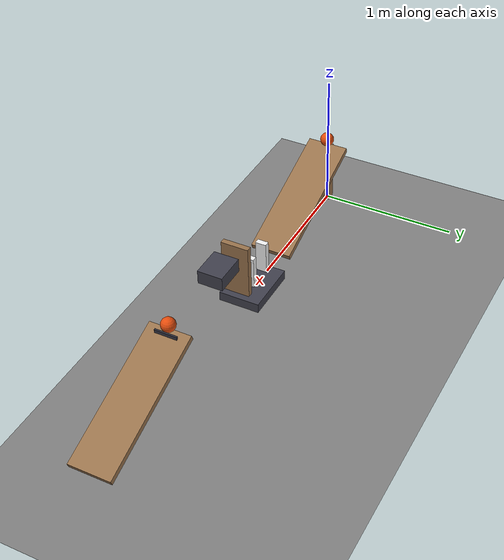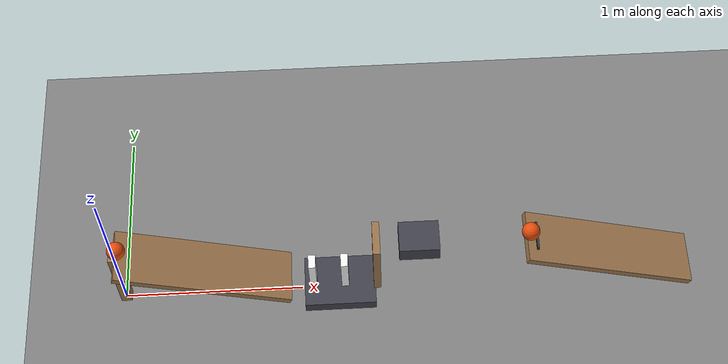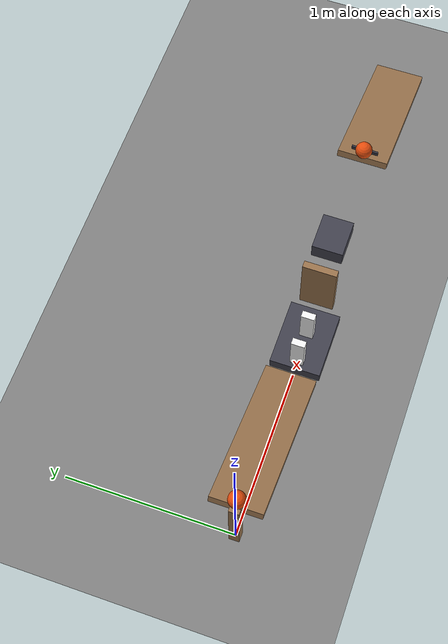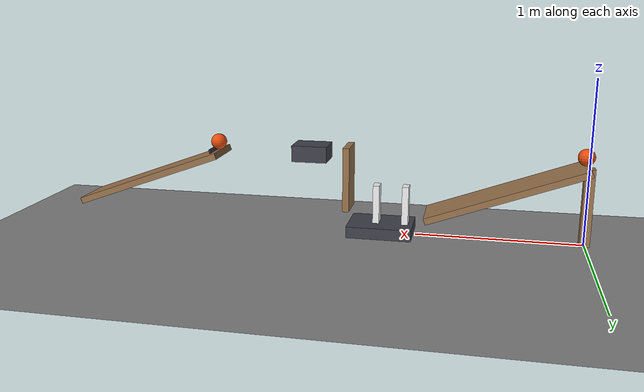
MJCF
<mujoco model="two_ramps_with_unobstructed_second_ramp">
  <compiler angle="radian"/>
  <option timestep="0.002"/>
  <worldbody>
    <geom name="floor" type="plane" size="10 10 0.1" friction="0.7 0.005 0.002"/>
    <body name="ramp1">
      <geom name="ramp1_deck" type="box" pos="0.469847 0 0.302216" size="0.5 0.15 0.02" euler="0 0.349066 0" friction="0.7 0.005 0.0001" solref="0.01 1" rgba="0.6 0.45 0.3 1"/>
      <geom name="ramp1_leg" type="box" pos="0 0 0.236613" size="0.03 0.03 0.236613" friction="0.7 0.005 0.0001" solref="0.01 1" rgba="0.6 0.45 0.3 1"/>
    </body>
    <body name="ball1" pos="0.023941 0 0.539004">
      <freejoint/>
      <geom name="ball1" type="sphere" pos="0 0 0" size="0.05" mass="0.2" condim="6" friction="0.7 0.005 0.0001" solref="0.01 1" rgba="0.9 0.3 0.05 1"/>
    </body>
    <body name="domino plinth">
      <geom name="domino plinth" type="box" pos="1.21653 0 0.035" size="0.2 0.15 0.035" friction="0.7 0.005 0.0001" solref="0.01 1" rgba="0.25 0.25 0.3 1"/>
    </body>
    <body name="domino1" pos="1.06653 0 0.19">
      <freejoint/>
      <geom name="domino1" type="box" pos="0 0 0" size="0.02 0.04 0.12" mass="0.25" friction="0.7 0.005 0.0001" solref="0.01 1" rgba="0.95 0.95 0.95 1"/>
    </body>
    <body name="domino2" pos="1.24653 0 0.19">
      <freejoint/>
      <geom name="domino2" type="box" pos="0 0 0" size="0.02 0.04 0.12" mass="0.25" friction="0.7 0.005 0.0001" solref="0.01 1" rgba="0.95 0.95 0.95 1"/>
    </body>
    <body name="flap1" pos="1.42953 0 0.15">
      <joint name="flap_hinge" type="hinge" pos="0 0 0" axis="0 1 0" limited="true" range="0 1.13446" damping="0.04"/>
      <geom name="flap1" type="box" pos="-0.003 0 0.2" size="0.02 0.1 0.2" mass="0.3" friction="0.7 0.005 0.0001" solref="0.01 1" rgba="0.6 0.45 0.3 1"/>
    </body>
    <body name="cart1" pos="1.65953 0 1000.5">
      <joint name="cart_guide_approximation" type="hinge" pos="0 0 0" axis="0 1 0" limited="true" range="-0.000872665 0" damping="200000"/>
      <geom name="cart1" type="box" pos="0 0 -1000" size="0.11 0.09 0.05" mass="0.5" friction="0.7 0.005 0.0001" solref="0.01 1" rgba="0.25 0.25 0.3 1"/>
    </body>
    <body name="ramp2">
      <geom name="ramp2" type="box" pos="2.71544 0 0.302216" size="0.5 0.15 0.02" euler="0 0.349066 0" friction="0.7 0.005 0.0001" solref="0.01 1" rgba="0.6 0.45 0.3 1"/>
    </body>
    <body name="ball2 retaining lip">
      <geom name="ball2 retaining lip" type="box" pos="2.30553 0 0.487004" size="0.006 0.08 0.012" friction="0.7 0.005 0.0001" solref="0.01 1" rgba="0.2 0.2 0.25 1"/>
    </body>
    <body name="ball2" pos="2.26953 0 0.539004">
      <freejoint/>
      <geom name="ball2" type="sphere" pos="0 0 0" size="0.05" mass="0.2" condim="6" friction="0.7 0.005 0.0001" solref="0.01 1" rgba="0.9 0.3 0.05 1"/>
    </body>
  </worldbody>
  <keyframe>
    <key name="start" qpos="0.023941 0 0.539004 1 0 0 0 1.06653 0 0.19 1 0 0 0 1.24653 0 0.19 1 0 0 0 0 0 2.26953 0 0.539004 1 0 0 0" qvel="0 0 0 0 0 0 0 0 0 0 0 0 0 0 0 0 0 0 0 0 0 0 0 0 0 0"/>
  </keyframe>
</mujoco>
